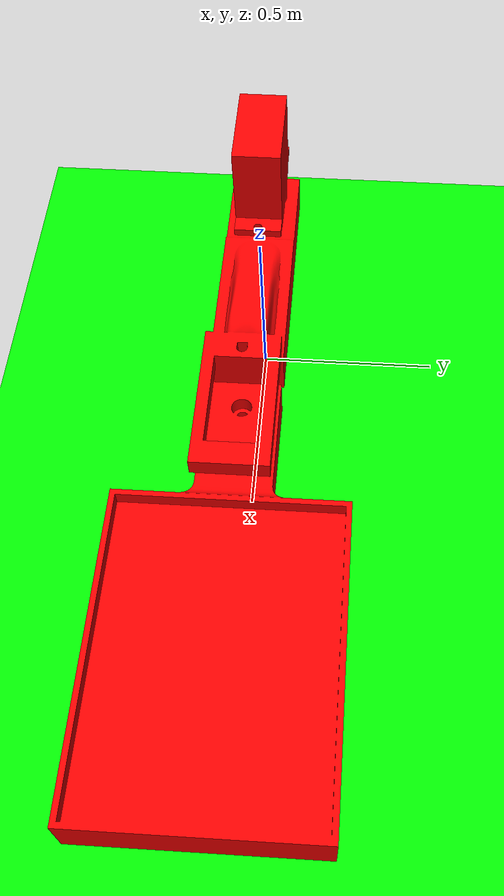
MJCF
<mujoco>
    <option
        timestep="0.01"
        gravity="0 0 -9.81"
        cone="pyramidal"
        impratio="0.5"
    />
    <compiler meshdir="meshes"/>

    <asset>
        <mesh name="Body" file="body.stl" scale="10 10 10"/>
        <mesh name="Head" file="head.stl" scale="10 10 10"/>
        <mesh name="ServoMotor" file="ServoMotor.stl" scale="10 10 10"/>
    </asset>

    <worldbody>
        <!-- Sol avec contact stabilisé -->
        <geom
            name="ground"
            type="plane"
            size="5 5 0.1"
            rgba="0 1 0 1"
            solref="0.0005 1.8"
            solimp="0.92 0.98 0.001"
            friction="1.2 0.7 0.2"/>

        <!-- Objet mesh avec paramètres anti-vibration -->
        <body name="Body" pos="0 0 0.5">
            <joint name="BodyFree" type="free"/>
            <geom
                name="BodyGeom"
                type="mesh"
                mesh="Body"
                mass="10"
                solref="0.0008 2"
                solimp="0.9 0.97 0.002"
                friction="1.1 0.5 0.15"
                rgba="1 0 0 1"
            />
        </body>
        <body name="Head" pos="0 0 0.5">
            <joint name="HeadFree" type="free"/>
            <geom
                name="HeadGeom"
                type="mesh"
                mesh="Head"
                mass="10"
                solref="0.0008 2"
                solimp="0.9 0.97 0.002"
                friction="1.1 0.5 0.15"
                rgba="1 0 0 1"
            />
        </body>
        <body name="ServoMotor" pos="0 0 0.5">
            <joint name="ServoMotorFree" type="free"/>
            <geom
                name="ServoMotorGeom"
                type="mesh"
                mesh="ServoMotor"
                mass="10"
                solref="0.0008 2"
                solimp="0.9 0.97 0.002"
                friction="1.1 0.5 0.15"
                rgba="1 0 0 1"
            />
        </body>
    </worldbody>
</mujoco>
